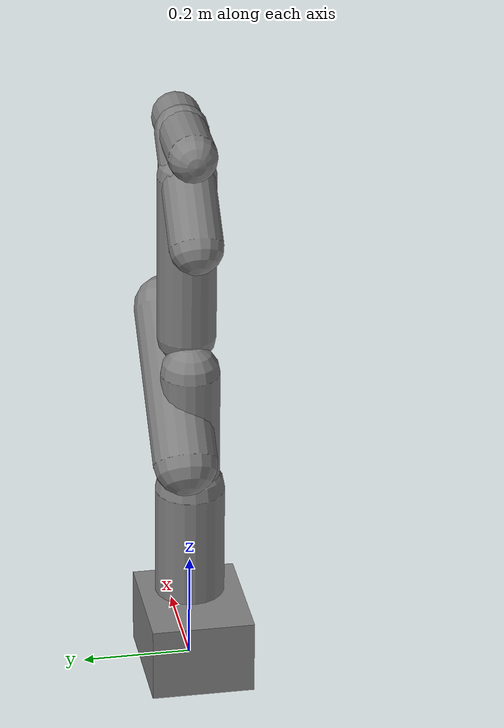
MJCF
<mujoco model="panda_stick">
  <default>
    <default class="panda">
      <joint armature="0.1" damping="1" axis="0 0 1" range="-2.8973 2.8973"/>
      <geom friction="0.3 0.3 0"/>
    </default>
  </default>

  <worldbody>
    <body name="link0" childclass="panda">
      <inertial mass="0.629769" pos="-0.041018 -0.00014 0.049974"
        quat="0.997866762 -0.009703265 0.064553490 0.000787011"
        diaginertia="0.003130511 0.003879839 0.004304650"/>
      <!-- AABB of ManiSkill's link0.stl collision mesh. The previous
           capsule extended 7.5 cm through the table and 21.5 cm above the
           source mesh, creating a permanent fixed-base contact. -->
      <geom type="box" size="0.113 0.095 0.0701" pos="-0.0413 0 0.0701"/>
      <body name="link1" pos="0 0 0.333">
        <inertial mass="4.970684" pos="0.003875 0.002081 -0.04762"
          quat="0.501217692 -0.493869538 -0.492246575 -0.512412933"
          diaginertia="0.008524556 0.703435429 0.707137014"/>
        <joint name="joint1"/>
        <geom type="capsule" size="0.065 0.12" pos="0 0 -0.10"/>
        <body name="link2" quat="1 -1 0 0">
          <inertial mass="0.646926" pos="-0.003141 -0.02872 0.003495"
            quat="0.205805094 -0.953457905 -0.032029993 0.218028362"
            diaginertia="0.002734251 0.028300107 0.031032643"/>
          <joint name="joint2" range="-1.7628 1.7628"/>
          <geom type="capsule" size="0.055 0.13" pos="0 -0.13 0" quat="0.70710678 0.70710678 0 0"/>
          <body name="link3" pos="0 -0.316 0" quat="1 1 0 0">
            <inertial mass="3.228604" pos="0.027518 0.039252 -0.066502"
              quat="0.503374860 0.290419819 0.493781781 -0.646876829"
              diaginertia="0.001246354 0.041479257 0.041501388"/>
            <joint name="joint3"/>
            <geom type="capsule" size="0.06 0.15" pos="0.04 0.02 -0.10" quat="0.92387953 0 0.38268343 0"/>
            <body name="link4" pos="0.0825 0 0" quat="1 1 0 0">
              <inertial mass="3.587895" pos="-0.05317 0.104419 0.027454"
                quat="0.004027581 0.528055825 0.753308644 -0.392003712"
                diaginertia="0.010620083 0.028148276 0.034959640"/>
              <joint name="joint4" range="-3.0718 -0.0698"/>
              <geom type="capsule" size="0.055 0.16" pos="-0.04 0.16 0" quat="0.70710678 0.70710678 0 0"/>
              <body name="link5" pos="-0.0825 0.384 0" quat="1 -1 0 0">
                <inertial mass="1.225946" pos="-0.011953 0.041065 -0.038437"
                  quat="0.108351802 0.748990079 -0.091104973 0.647281725"
                  diaginertia="0.008034370 0.028853091 0.036762538"/>
                <joint name="joint5"/>
                <geom type="capsule" size="0.05 0.11" pos="0.02 0 -0.08" quat="0.92387953 0 0.38268343 0"/>
                <body name="link6" quat="1 1 0 0">
                  <inertial mass="1.666555" pos="0.060149 -0.014117 -0.010517"
                    quat="0.983867678 -0.091781102 -0.144786625 -0.051161073"
                    diaginertia="0.001597865 0.004310374 0.005842761"/>
                  <joint name="joint6" range="-0.0175 3.7525"/>
                  <geom type="capsule" size="0.045 0.09" pos="0.07 0 0" quat="0.70710678 0 0.70710678 0"/>
                  <body name="link7" pos="0.088 0 0" quat="1 1 0 0">
                    <inertial mass="0.735522" pos="0.010517 -0.004252 0.061597"
                      quat="0.091860790 0.753986575 0.015908111 0.650240549"
                      diaginertia="0.004518030 0.010105477 0.012734493"/>
                    <joint name="joint7"/>
                    <geom type="capsule" size="0.045 0.06" pos="0 0 0.07"/>
                    <geom name="stick" type="capsule" size="0.008 0.042"
                      pos="0 0 0.207" friction="0.3 0.3 0"/>
                  </body>
                </body>
              </body>
            </body>
          </body>
        </body>
      </body>
    </body>
  </worldbody>

  <actuator>
    <motor name="actuator1" joint="joint1" ctrlrange="-100 100"/>
    <motor name="actuator2" joint="joint2" ctrlrange="-100 100"/>
    <motor name="actuator3" joint="joint3" ctrlrange="-100 100"/>
    <motor name="actuator4" joint="joint4" ctrlrange="-100 100"/>
    <motor name="actuator5" joint="joint5" ctrlrange="-100 100"/>
    <motor name="actuator6" joint="joint6" ctrlrange="-100 100"/>
    <motor name="actuator7" joint="joint7" ctrlrange="-100 100"/>
  </actuator>
</mujoco>
